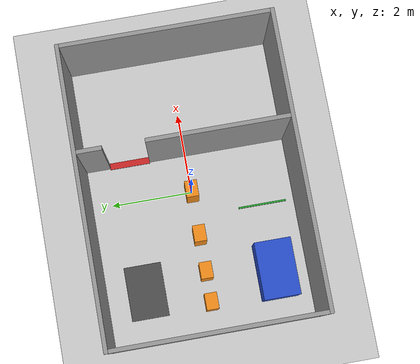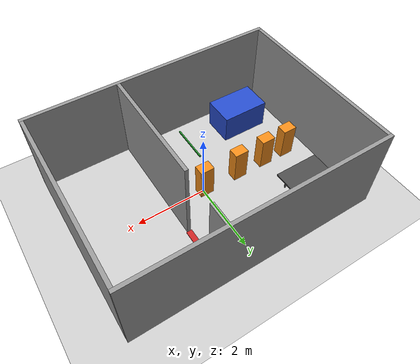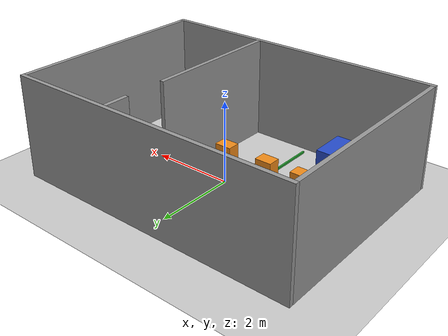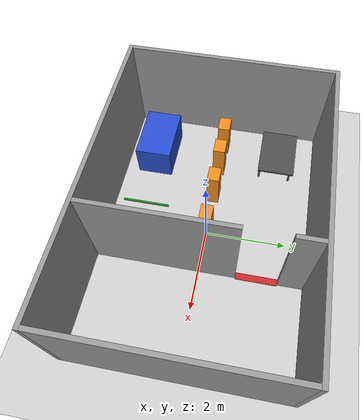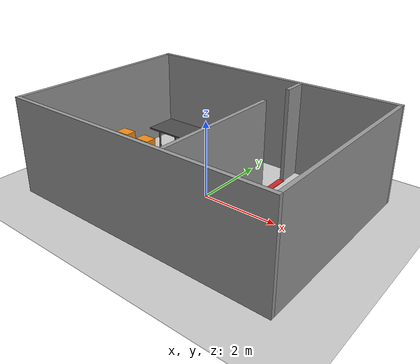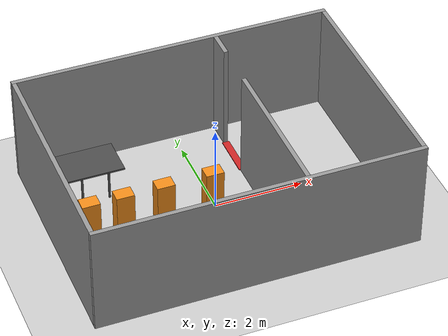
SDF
<?xml version="1.0" ?>
<sdf version="1.6">
  <world name="coverage_test">

    <include><uri>model://sun</uri></include>
    <include><uri>model://ground_plane</uri></include>

    <scene>
      <ambient>0.55 0.55 0.55 1</ambient>
      <background>0.72 0.75 0.78 1</background>
      <shadows>true</shadows>
    </scene>

    <!-- Fixed step. Do not raise max_step_size: the threshold climb depends on
         contact resolution, and a coarser step makes the result non-repeatable. -->
    <physics type="ode">
      <max_step_size>0.001</max_step_size>
      <real_time_update_rate>1000</real_time_update_rate>
      <real_time_factor>1.0</real_time_factor>
      <ode>
        <solver>
          <type>quick</type>
          <iters>50</iters>
        </solver>
        <constraints>
          <cfm>0.0</cfm>
          <erp>0.2</erp>
        </constraints>
      </ode>
    </physics>

    <!-- ================= walls ================= -->

    <model name="wall_north">
      <static>true</static>
      <pose>0 2.55 1.25 0 0 0</pose>
      <link name="link">
        <collision name="c"><geometry><box><size>7.2 0.1 2.5</size></box></geometry></collision>
        <visual name="v"><geometry><box><size>7.2 0.1 2.5</size></box></geometry>
          <material><script><uri>file://media/materials/scripts/gazebo.material</uri><name>Gazebo/Grey</name></script></material>
        </visual>
      </link>
    </model>

    <model name="wall_south">
      <static>true</static>
      <pose>0 -2.55 1.25 0 0 0</pose>
      <link name="link">
        <collision name="c"><geometry><box><size>7.2 0.1 2.5</size></box></geometry></collision>
        <visual name="v"><geometry><box><size>7.2 0.1 2.5</size></box></geometry>
          <material><script><uri>file://media/materials/scripts/gazebo.material</uri><name>Gazebo/Grey</name></script></material>
        </visual>
      </link>
    </model>

    <model name="wall_west">
      <static>true</static>
      <pose>-3.55 0 1.25 0 0 0</pose>
      <link name="link">
        <collision name="c"><geometry><box><size>0.1 5.0 2.5</size></box></geometry></collision>
        <visual name="v"><geometry><box><size>0.1 5.0 2.5</size></box></geometry>
          <material><script><uri>file://media/materials/scripts/gazebo.material</uri><name>Gazebo/Grey</name></script></material>
        </visual>
      </link>
    </model>

    <model name="wall_east">
      <static>true</static>
      <pose>3.55 0 1.25 0 0 0</pose>
      <link name="link">
        <collision name="c"><geometry><box><size>0.1 5.0 2.5</size></box></geometry></collision>
        <visual name="v"><geometry><box><size>0.1 5.0 2.5</size></box></geometry>
          <material><script><uri>file://media/materials/scripts/gazebo.material</uri><name>Gazebo/Grey</name></script></material>
        </visual>
      </link>
    </model>

    <!-- ============ partition with a 1.0 m doorway ============ -->

    <model name="partition_south">
      <static>true</static>
      <pose>1.0 -0.80 1.25 0 0 0</pose>
      <link name="link">
        <collision name="c"><geometry><box><size>0.1 3.4 2.5</size></box></geometry></collision>
        <visual name="v"><geometry><box><size>0.1 3.4 2.5</size></box></geometry>
          <material><script><uri>file://media/materials/scripts/gazebo.material</uri><name>Gazebo/Grey</name></script></material>
        </visual>
      </link>
    </model>

    <model name="partition_north">
      <static>true</static>
      <pose>1.0 2.20 1.25 0 0 0</pose>
      <link name="link">
        <collision name="c"><geometry><box><size>0.1 0.6 2.5</size></box></geometry></collision>
        <visual name="v"><geometry><box><size>0.1 0.6 2.5</size></box></geometry>
          <material><script><uri>file://media/materials/scripts/gazebo.material</uri><name>Gazebo/Grey</name></script></material>
        </visual>
      </link>
    </model>

    <!-- 20 mm threshold, floor to 0.02, spanning the doorway -->
    <model name="threshold">
      <static>true</static>
      <pose>1.0 1.40 0.01 0 0 0</pose>
      <link name="link">
        <collision name="c"><geometry><box><size>0.16 1.0 0.02</size></box></geometry>
          <surface><friction><ode><mu>0.9</mu><mu2>0.9</mu2></ode></friction></surface>
        </collision>
        <visual name="v"><geometry><box><size>0.16 1.0 0.02</size></box></geometry>
          <material><script><uri>file://media/materials/scripts/gazebo.material</uri><name>Gazebo/Red</name></script></material>
        </visual>
      </link>
    </model>

    <model name="table">
      <static>true</static>
      <pose>-2.30 1.50 0 0 0 0</pose>

      <link name="top">
        <pose>0 0 0.72 0 0 0</pose>
        <collision name="c"><geometry><box><size>1.3 0.9 0.04</size></box></geometry></collision>
        <visual name="v"><geometry><box><size>1.3 0.9 0.04</size></box></geometry>
          <material><script><uri>file://media/materials/scripts/gazebo.material</uri><name>Gazebo/DarkGrey</name></script></material>
        </visual>
      </link>

      <link name="leg_fl">
        <pose>-0.30 0.40 0.35 0 0 0</pose>
        <collision name="c"><geometry><cylinder><radius>0.025</radius><length>0.7</length></cylinder></geometry></collision>
        <visual name="v"><geometry><cylinder><radius>0.025</radius><length>0.7</length></cylinder></geometry>
          <material><script><uri>file://media/materials/scripts/gazebo.material</uri><name>Gazebo/DarkGrey</name></script></material>
        </visual>
      </link>

      <link name="leg_fr">
        <pose>0.30 0.40 0.35 0 0 0</pose>
        <collision name="c"><geometry><cylinder><radius>0.025</radius><length>0.7</length></cylinder></geometry></collision>
        <visual name="v"><geometry><cylinder><radius>0.025</radius><length>0.7</length></cylinder></geometry>
          <material><script><uri>file://media/materials/scripts/gazebo.material</uri><name>Gazebo/DarkGrey</name></script></material>
        </visual>
      </link>

      <link name="leg_bl">
        <pose>-0.30 -0.40 0.35 0 0 0</pose>
        <collision name="c"><geometry><cylinder><radius>0.025</radius><length>0.7</length></cylinder></geometry></collision>
        <visual name="v"><geometry><cylinder><radius>0.025</radius><length>0.7</length></cylinder></geometry>
          <material><script><uri>file://media/materials/scripts/gazebo.material</uri><name>Gazebo/DarkGrey</name></script></material>
        </visual>
      </link>

      <link name="leg_br">
        <pose>0.30 -0.40 0.35 0 0 0</pose>
        <collision name="c"><geometry><cylinder><radius>0.025</radius><length>0.7</length></cylinder></geometry></collision>
        <visual name="v"><geometry><cylinder><radius>0.025</radius><length>0.7</length></cylinder></geometry>
          <material><script><uri>file://media/materials/scripts/gazebo.material</uri><name>Gazebo/DarkGrey</name></script></material>
        </visual>
      </link>
    </model>

    <model name="sofa">
      <static>true</static>
      <pose>-2.30 -1.70 0.425 0 0 0</pose>
      <link name="link">
        <collision name="c"><geometry><box><size>1.4 0.9 0.85</size></box></geometry></collision>
        <visual name="v"><geometry><box><size>1.4 0.9 0.85</size></box></geometry>
          <material><script><uri>file://media/materials/scripts/gazebo.material</uri><name>Gazebo/Blue</name></script></material>
        </visual>
      </link>
    </model>

    <model name="low_barrier">
      <static>true</static>
      <pose>-0.60 -1.70 0.025 0 0 0</pose>
      <link name="link">
        <collision name="c"><geometry><box><size>0.04 1.20 0.05</size></box></geometry></collision>
        <visual name="v"><geometry><box><size>0.04 1.20 0.05</size></box></geometry>
          <material><script><uri>file://media/materials/scripts/gazebo.material</uri><name>Gazebo/Green</name></script></material>
        </visual>
      </link>
    </model>

    <model name="gap_rig">
      <static>true</static>
      <pose>0 0 0 0 0 0</pose>

      <link name="block_a">
        <pose>-2.80 0 0.5 0 0 0</pose>
        <collision name="c"><geometry><box><size>0.4 0.3 1.0</size></box></geometry></collision>
        <visual name="v"><geometry><box><size>0.4 0.3 1.0</size></box></geometry>
          <material><script><uri>file://media/materials/scripts/gazebo.material</uri><name>Gazebo/Orange</name></script></material>
        </visual>
      </link>

      <!-- gap 0.35 -->
      <link name="block_b">
        <pose>-2.05 0 0.5 0 0 0</pose>
        <collision name="c"><geometry><box><size>0.4 0.3 1.0</size></box></geometry></collision>
        <visual name="v"><geometry><box><size>0.4 0.3 1.0</size></box></geometry>
          <material><script><uri>file://media/materials/scripts/gazebo.material</uri><name>Gazebo/Orange</name></script></material>
        </visual>
      </link>

      <!-- gap 0.50 -->
      <link name="block_c">
        <pose>-1.15 0 0.5 0 0 0</pose>
        <collision name="c"><geometry><box><size>0.4 0.3 1.0</size></box></geometry></collision>
        <visual name="v"><geometry><box><size>0.4 0.3 1.0</size></box></geometry>
          <material><script><uri>file://media/materials/scripts/gazebo.material</uri><name>Gazebo/Orange</name></script></material>
        </visual>
      </link>

      <!-- gap 0.70 -->
      <link name="block_d">
        <pose>-0.05 0 0.5 0 0 0</pose>
        <collision name="c"><geometry><box><size>0.4 0.3 1.0</size></box></geometry></collision>
        <visual name="v"><geometry><box><size>0.4 0.3 1.0</size></box></geometry>
          <material><script><uri>file://media/materials/scripts/gazebo.material</uri><name>Gazebo/Orange</name></script></material>
        </visual>
      </link>
    </model>

  </world>
</sdf>
